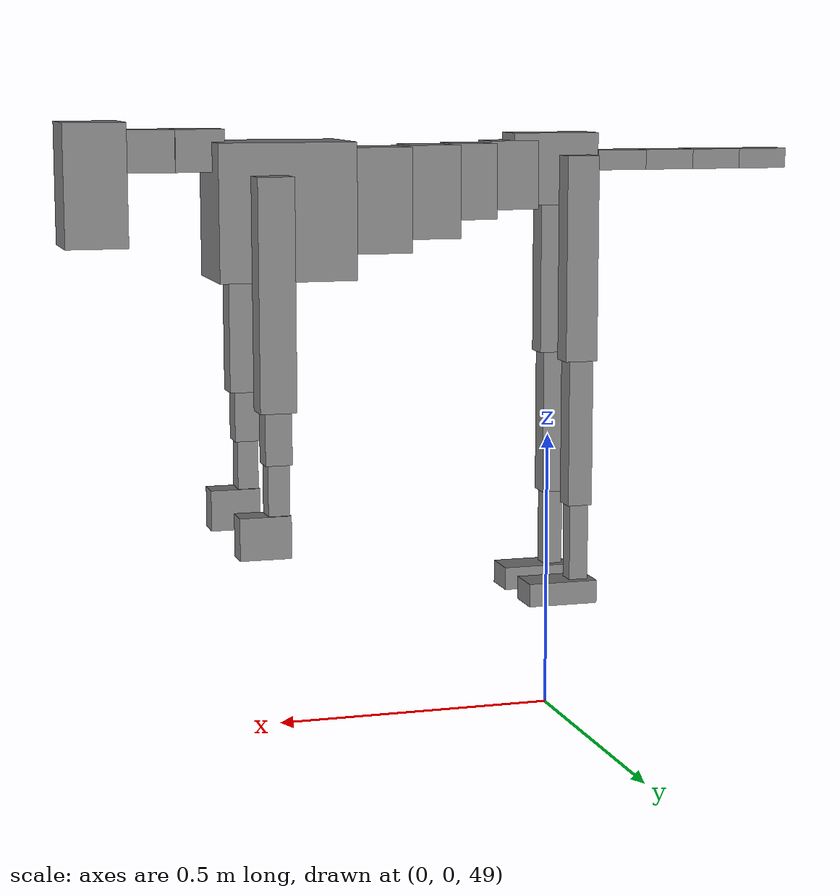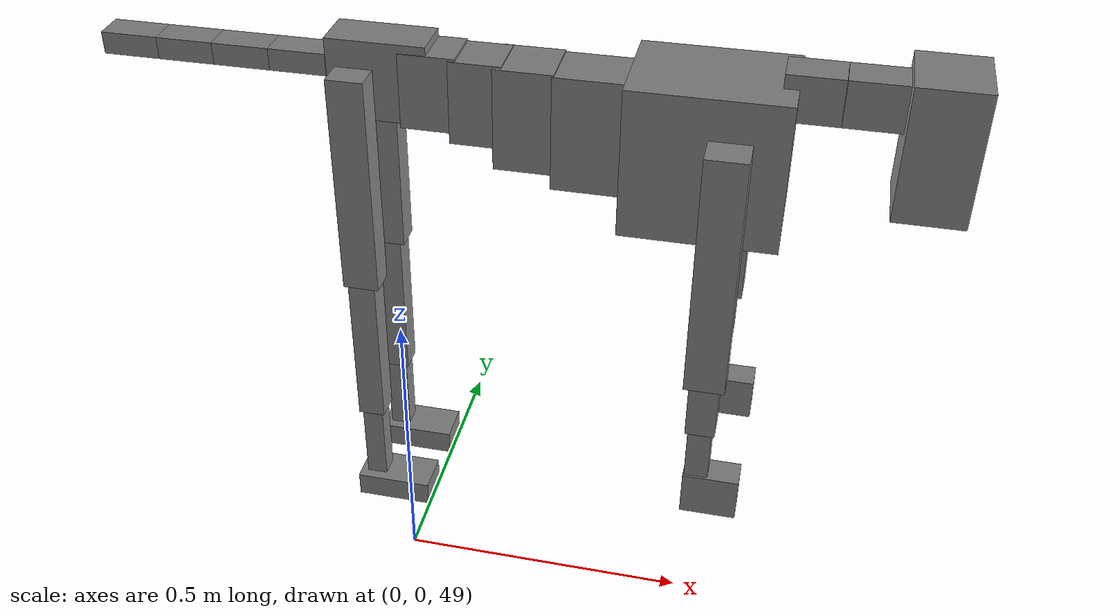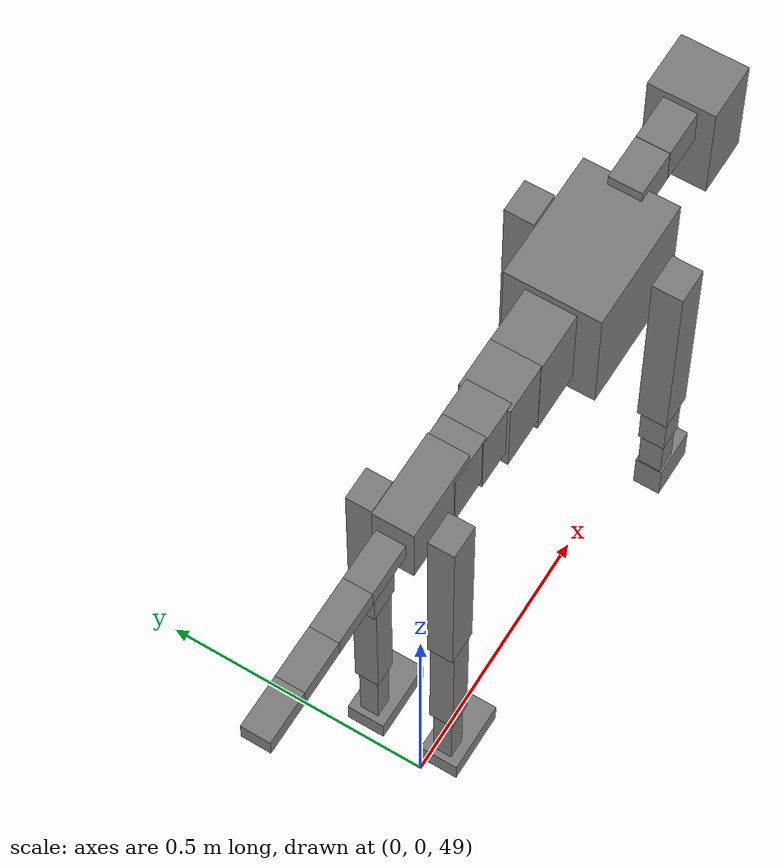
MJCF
<mujoco model="dog">

    <default>
        <joint armature="0.02" stiffness="1" damping="0.2" limited="true"/>
        <geom condim="3" friction="1 0.05 0.05" margin="0.01"/>
        <motor ctrllimited="true" ctrlrange="-1.0 1.0" forcelimited="true" gear="50"/>
    </default>

    <compiler inertiafromgeom="true" angle="radian"/>

    <option timestep="0.016" iterations="50" tolerance="1e-10" solver="Newton" jacobian="dense" cone="pyramidal"/>

    <size nconmax="20000" njmax="60000" nstack="5000000"/>
    <visual>
        <map force="0.1" zfar="30"/>
        <rgba haze="0.15 0.25 0.35 1"/>
        <quality shadowsize="2048"/>
        <global offwidth="800" offheight="800"/>
    </visual>

    <asset>
        <texture type="skybox" builtin="gradient" rgb1="0.3 0.5 0.7" rgb2="0 0 0" width="512" height="512"/>
        <texture name="texplane" type="2d" builtin="checker" rgb1=".2 .3 .4" rgb2=".1 0.15 0.2" width="512" height="512"
                 mark="cross" markrgb=".8 .8 .8"/>
        <texture name="texgeom" type="cube" builtin="flat" mark="cross" width="127" height="1278" rgb1="0.8 0.6 0.4"
                 rgb2="0.8 0.6 0.4" markrgb="1 1 1" random="0.01"/>

        <material name="matplane" reflectance="0.3" texture="texplane" texrepeat="1 1" texuniform="true"/>
        <material name="matgeom" texture="texgeom" texuniform="true" rgba="0.8 0.6 .4 1"/>
    </asset>

    <worldbody>
        <geom name="floor" pos="0 0 0" size="0 0 .25" type="plane" material="matplane" condim="3"/>

        <light directional="false" diffuse=".2 .2 .2" specular="0 0 0" pos="0 0 5" dir="0 0 -1" castshadow="false"/>
        <light mode="targetbodycom" target="torso" directional="false" diffuse=".8 .8 .8" specular="0.3 0.3 0.3"
               pos="0 0 4.0" dir="0 0 -1"/>

        <body name="root" pos="0 0 50">
            <freejoint name="root_1"/>
            <geom type="box" pos="0 0 -0.02" size="0.0774  0.0358  0.063" density="2030"/>

            <body name="spine1" pos="0.054 0 0">
                <joint name="spine1_y" axis="0 1 0" range="0 0.7" limited="true"/>
                <geom type="box" pos="0.02375 0 -0.03" size="0.04375  0.0375  0.05985" density="2030"/>

                <body name="spine2" pos="0.0612 0 0">
                    <joint name="spine2_y" axis="0 1 0" range="-0.15 0.15" limited="true"/>
                    <geom type="box" pos="0.03555  0  -0.04" size="0.04055  0.039  0.06615" density="2030"/>

                    <body name="spine3" pos="0.0730 0 0">
                        <joint name="spine3_y" axis="0 1 0" range="-0.15 0.15" limited="true"/>
                        <geom type="box" pos="0.03555  0  -0.057" size="0.04555  0.0445  0.081" density="2030"/>

                        <body name="spine4" pos="0.0780 0 0">
                            <joint name="spine4_y" axis="0 1 0" range="-0.15 0.15" limited="true"/>
                            <geom type="box" pos="0.05265  0  -0.07" size="0.05265  0.045  0.09135" density="2030"/>

                            <body name="torso" pos="0.1082 0 0">
                                <joint name="torso_y" axis="0 1 0" range="-0.15 0.15" limited="true"/>
                                <geom type="box" pos="0.11925  0  -0.085" size="0.11925  0.085  0.11745"
                                      density="2030"/>

                                <body name="neck1" pos="0.2160  0   0.0180">
                                    <joint name="neck1_y" axis="0 1 0" range="-1.2  -1" limited="true"/>
                                    <geom type="box" pos="0.0423  0  0" size="0.0423  0.03  0.036" density="2325"/>

                                    <body name="neck2" pos="0.0853  0  0">
                                        <joint name="neck2_y" axis="0 1 0" range="0.1  0" limited="true"/>
                                        <geom type="box" pos="0.0423  0  0" size="0.0423  0.03  0.036" density="2325"/>

                                        <body name="head" pos="0.0853  0  0">
                                            <joint name="head_y" axis="0 1 0" range="-0.3  -0.2" limited="true"/>
                                            <geom type="box" pos="0.0531  0  -0.055" size="0.0531  0.06  0.1044"
                                                  density="4030"/>

                                        </body>
                                    </body>
                                </body>

                                <body name="front_shoulder" pos="0.156  0   -0.0480">
                                    <joint name="front_shoulder_y" axis="0 1 0" range="-1 1.5" limited="true"/>
                                    <geom type="box" pos="0 0.13 -0.1705" size="0.0314  0.0268  0.1972" density="1158"/>
                                    <geom type="box" pos="0 -0.13 -0.1705" size="0.0314  0.0268  0.1972"
                                          density="1158"/>

                                    <body name="front_elbow" pos="0  0  -0.3410">
                                        <joint name="front_elbow_y" axis="0 1 0" range="-2 0" limited="true"/>
                                        <geom type="box" pos="0 0.13 -0.0578" size="0.0230  0.0235  0.0578"
                                              density="1081"/>
                                        <geom type="box" pos="0 -0.13 -0.0578" size="0.0230  0.0235  0.0578"
                                              density="1081"/>

                                        <body name="front_wrist" pos="0  0  -0.1155">
                                            <joint name="front_wrist_y" axis="0 1 0" range="-0.2 0" limited="true"/>
                                            <geom type="box" pos="0 0.13 -0.0510" size="0.0186  0.0207  0.0641"
                                                  density="1664"/>
                                            <geom type="box" pos="0 -0.13 -0.0510" size="0.0186  0.0207  0.0641"
                                                  density="1664"/>

                                            <body name="front_finger_end" pos="0  0  -0.1020">
                                                <joint name="front_finger_y" axis="0 1 0" range="-0.4 1"
                                                       limited="true"/>
                                                <geom type="box" pos="0.0242  0.13  -0.0217"
                                                      size="0.0444  0.0242  0.0367" density="1515"/>
                                                <geom type="box" pos="0.0242  -0.13  -0.0217"
                                                      size="0.0444  0.0242  0.0367" density="1515"/>

                                            </body>

                                        </body>
                                    </body>
                                </body>

                            </body>
                        </body>
                    </body>
                </body>
            </body>

            <body name="back_hip" pos="-0.03 0 -0.018">
                <joint name="back_hip_y" axis="0 1 0" range="-1.5 0.3" limited="true"/>
                <geom type="box" pos="0 0.07 -0.1576" size="0.0289  0.0227  0.1804" density="1154"/>
                <geom type="box" pos="0 -0.07 -0.1576" size="0.0289  0.0227  0.1804" density="1154"/>

                <body name="back_knee" pos="0  0  -0.3152">
                    <joint name="back_knee_y" axis="0 1 0" range="0 2.8" limited="true"/>
                    <geom type="box" pos="0 0.07 -0.1331" size="0.0219  0.0216  0.1487" density="1227"/>
                    <geom type="box" pos="0 -0.07 -0.1331" size="0.0219  0.0216  0.1487" density="1227"/>

                    <body name="back_ankle" pos="0  0  -0.2663">
                        <joint name="back_ankle_y" axis="0 1 0" range="-2.2 0" limited="true"/>
                        <geom type="box" pos="0 0.07 -0.0830" size="0.0170  0.0170  0.0943" density="1284"/>
                        <geom type="box" pos="0 -0.07 -0.0830" size="0.0170  0.0170  0.0943" density="1284"/>

                        <body name="back_toe_end" pos="0  0  -0.1660">
                            <joint name="back_toe_y" axis="0 1 0" range="-0.4 1" limited="true"/>
                            <geom type="box" pos="0.0342  0.07  -0.0056" size="0.0628  0.0342  0.0206" density="1515"/>
                            <geom type="box" pos="0.0342  -0.07  -0.0056" size="0.0628  0.0342  0.0206" density="1515"/>

                        </body>
                    </body>
                </body>
            </body>

            <body name="tail1" pos="-0.074 0 -0.006">
                <joint name="tail1_y" axis="0 1 0" range="-0.2 0.2" limited="true"/>
                <geom type="box" pos="-0.0536  0  0" size="0.045  0.025  0.0175" density="1587"/>

                <body name="tail2" pos="-0.09 0 0">
                    <joint name="tail2_y" axis="0 1 0" range="-0.2 0.2" limited="true"/>
                    <geom type="box" pos="-0.0536  0  0" size="0.045  0.025  0.0175" density="1587"/>

                    <body name="tail3" pos="-0.09 0 0">
                        <joint name="tail3_y" axis="0 1 0" range="-0.2 0.2" limited="true"/>
                        <geom type="box" pos="-0.0536  0  0" size="0.045  0.025  0.0175" density="1587"/>

                        <body name="tail4" pos="-0.09 0 0">
                            <joint name="tail4_y" axis="0 1 0" range="-0.2 0.2" limited="true"/>
                            <geom type="box" pos="-0.0536  0  0" size="0.045  0.025  0.0175" density="1587"/>

                        </body>
                    </body>
                </body>
            </body>
        </body>
    </worldbody>

    <actuator>
        <motor joint="spine1_y" forcerange="-150 150     "/>
        <motor joint="spine2_y" forcerange="-150 150     "/>
        <motor joint="spine3_y" forcerange="-150 150     "/>
        <motor joint="spine4_y" forcerange="-150 150     "/>
        <motor joint="torso_y" forcerange="-150 150     "/>
        <motor joint="neck1_y" forcerange="-100 100       "/>
        <motor joint="neck2_y" forcerange="-100 100       "/>
        <motor joint="head_y" forcerange="-150 150       "/>
        <motor joint="front_shoulder_y" forcerange="-144.21 134.75"/>
        <motor joint="front_elbow_y" forcerange="-156.86 114.10"/>
        <motor joint="front_wrist_y" forcerange="-100.22 65.12"/>
        <motor joint="front_finger_y" forcerange="-58.25 30.92"/>
        <motor joint="back_hip_y" forcerange="-220.66 281.84"/>
        <motor joint="back_knee_y" forcerange="-256.61 257.84"/>
        <motor joint="back_angle_y" forcerange="-94.42 77.43"/>
        <motor joint="back_toe_y" forcerange="-134.67 59.27"/>
        <motor joint="tail1_y" forcerange="-50 50     "/>
        <motor joint="tail2_y" forcerange="-50 50     "/>
        <motor joint="tail3_y" forcerange="-50 50     "/>
        <motor joint="tail4_y" forcerange="-50 50     "/>
    </actuator>
</mujoco>
